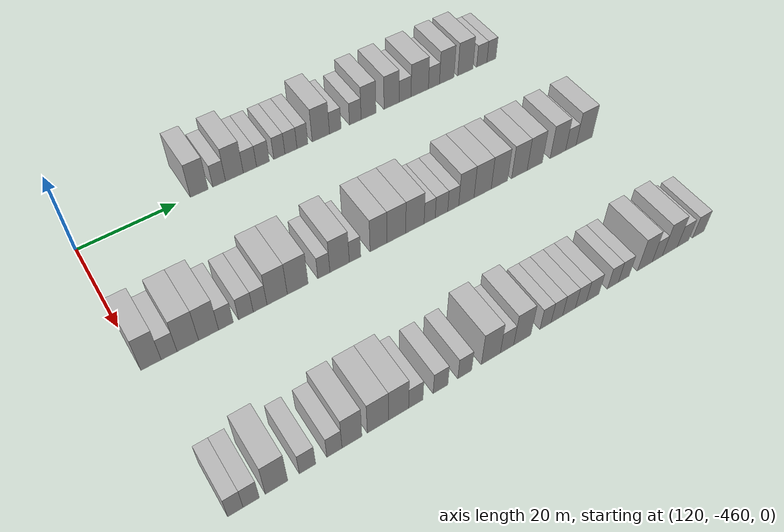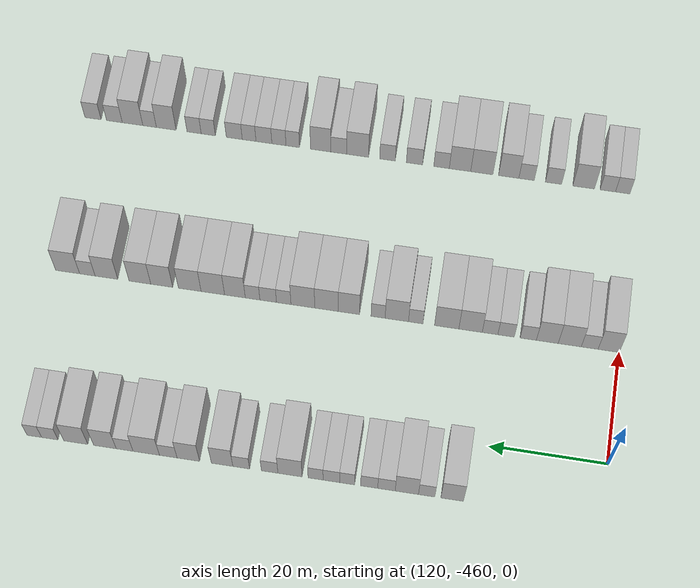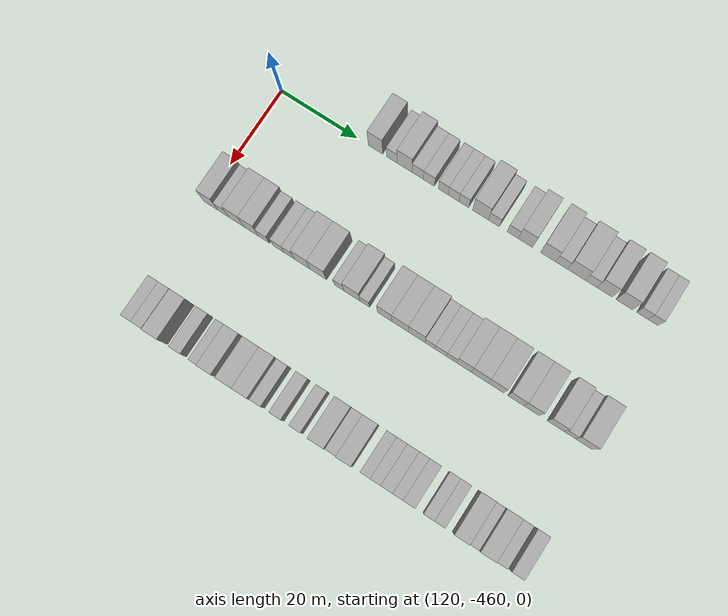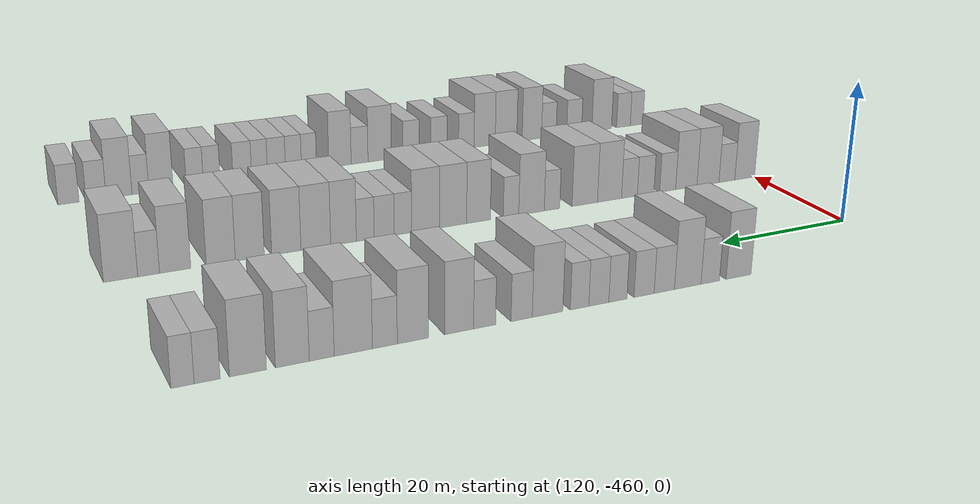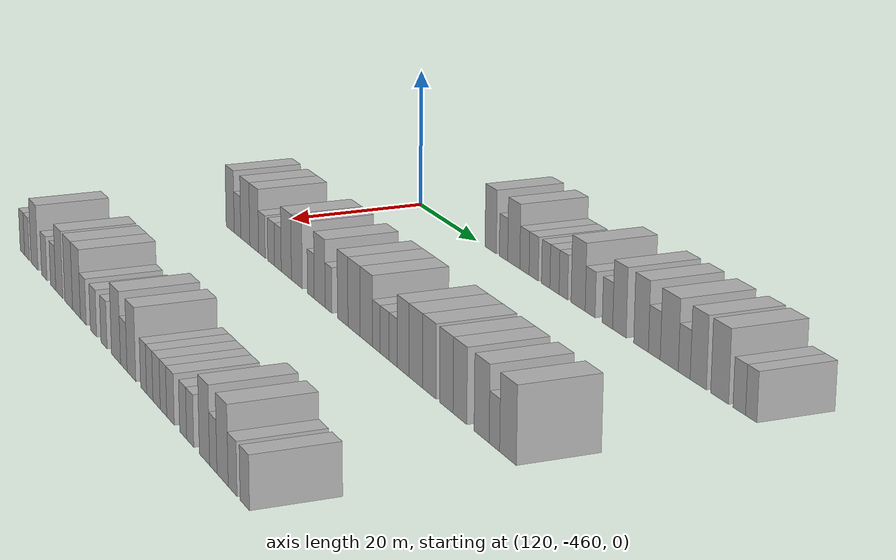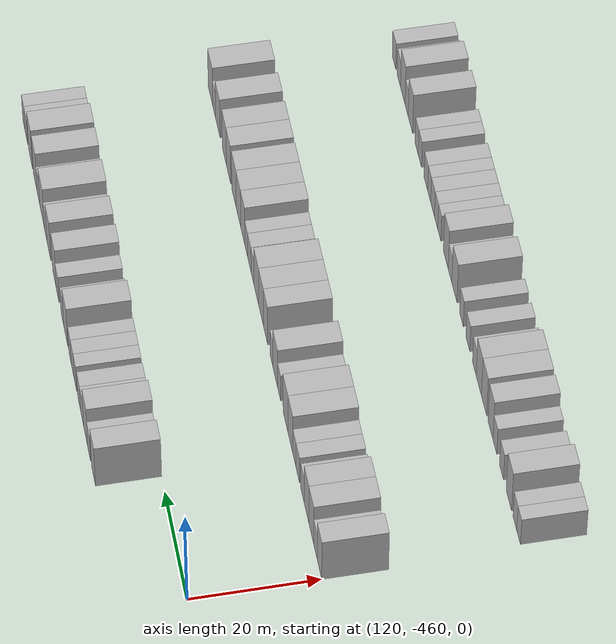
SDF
<sdf version="1.6">
 <world name="default">
  <model name="building_690">
   <static>1</static>
   <pose>115.0000 -435.1415 0 0.000000 0.000000 0.000000</pose>
   <link name="link">
    <pose>0 0 4.50 0 0 0</pose>
    <collision name="collision"><geometry><box><size>10.0000 3.7746 9.0000</size></box></geometry></collision>
    <visual name="visual">
     <cast_shadows>0</cast_shadows>
     <geometry><box><size>10.0000 3.7746 9.0000</size></box></geometry>
     <material>
      <script>
       <uri>model://HANNAS_wall/materials/scripts</uri>
       <uri>model://HANNAS_wall/materials/textures</uri>
       <name>vrc/HANNAS_wall</name>
      </script>
     </material>
    </visual>
   </link>
  </model>
  <model name="building_691">
   <static>1</static>
   <pose>115.0000 -430.8856 0 0.000000 0.000000 0.000000</pose>
   <link name="link">
    <pose>0 0 3.00 0 0 0</pose>
    <collision name="collision"><geometry><box><size>10.0000 2.7371 6.0000</size></box></geometry></collision>
    <visual name="visual">
     <cast_shadows>0</cast_shadows>
     <geometry><box><size>10.0000 2.7371 6.0000</size></box></geometry>
     <material>
      <script>
       <uri>model://HANNAS_wall/materials/scripts</uri>
       <uri>model://HANNAS_wall/materials/textures</uri>
       <name>vrc/HANNAS_wall</name>
      </script>
     </material>
    </visual>
   </link>
  </model>
  <model name="building_692">
   <static>1</static>
   <pose>115.0000 -427.5727 0 0.000000 0.000000 0.000000</pose>
   <link name="link">
    <pose>0 0 4.50 0 0 0</pose>
    <collision name="collision"><geometry><box><size>10.0000 3.8888 9.0000</size></box></geometry></collision>
    <visual name="visual">
     <cast_shadows>0</cast_shadows>
     <geometry><box><size>10.0000 3.8888 9.0000</size></box></geometry>
     <material>
      <script>
       <uri>model://HANNAS_wall/materials/scripts</uri>
       <uri>model://HANNAS_wall/materials/textures</uri>
       <name>vrc/HANNAS_wall</name>
      </script>
     </material>
    </visual>
   </link>
  </model>
  <model name="building_693">
   <static>1</static>
   <pose>115.0000 -424.1624 0 0.000000 0.000000 0.000000</pose>
   <link name="link">
    <pose>0 0 3.00 0 0 0</pose>
    <collision name="collision"><geometry><box><size>10.0000 2.9317 6.0000</size></box></geometry></collision>
    <visual name="visual">
     <cast_shadows>0</cast_shadows>
     <geometry><box><size>10.0000 2.9317 6.0000</size></box></geometry>
     <material>
      <script>
       <uri>model://HANNAS_wall/materials/scripts</uri>
       <uri>model://HANNAS_wall/materials/textures</uri>
       <name>vrc/HANNAS_wall</name>
      </script>
     </material>
    </visual>
   </link>
  </model>
  <model name="building_694">
   <static>1</static>
   <pose>115.0000 -421.2687 0 0.000000 0.000000 0.000000</pose>
   <link name="link">
    <pose>0 0 3.00 0 0 0</pose>
    <collision name="collision"><geometry><box><size>10.0000 2.8557 6.0000</size></box></geometry></collision>
    <visual name="visual">
     <cast_shadows>0</cast_shadows>
     <geometry><box><size>10.0000 2.8557 6.0000</size></box></geometry>
     <material>
      <script>
       <uri>model://HANNAS_wall/materials/scripts</uri>
       <uri>model://HANNAS_wall/materials/textures</uri>
       <name>vrc/HANNAS_wall</name>
      </script>
     </material>
    </visual>
   </link>
  </model>
  <model name="building_695">
   <static>1</static>
   <pose>115.0000 -417.5749 0 0.000000 0.000000 0.000000</pose>
   <link name="link">
    <pose>0 0 3.00 0 0 0</pose>
    <collision name="collision"><geometry><box><size>10.0000 2.5320 6.0000</size></box></geometry></collision>
    <visual name="visual">
     <cast_shadows>0</cast_shadows>
     <geometry><box><size>10.0000 2.5320 6.0000</size></box></geometry>
     <material>
      <script>
       <uri>model://HANNAS_wall/materials/scripts</uri>
       <uri>model://HANNAS_wall/materials/textures</uri>
       <name>vrc/HANNAS_wall</name>
      </script>
     </material>
    </visual>
   </link>
  </model>
  <model name="building_696">
   <static>1</static>
   <pose>115.0000 -414.9284 0 0.000000 0.000000 0.000000</pose>
   <link name="link">
    <pose>0 0 3.00 0 0 0</pose>
    <collision name="collision"><geometry><box><size>10.0000 2.7609 6.0000</size></box></geometry></collision>
    <visual name="visual">
     <cast_shadows>0</cast_shadows>
     <geometry><box><size>10.0000 2.7609 6.0000</size></box></geometry>
     <material>
      <script>
       <uri>model://HANNAS_wall/materials/scripts</uri>
       <uri>model://HANNAS_wall/materials/textures</uri>
       <name>vrc/HANNAS_wall</name>
      </script>
     </material>
    </visual>
   </link>
  </model>
  <model name="building_697">
   <static>1</static>
   <pose>115.0000 -412.2848 0 0.000000 0.000000 0.000000</pose>
   <link name="link">
    <pose>0 0 3.00 0 0 0</pose>
    <collision name="collision"><geometry><box><size>10.0000 2.5263 6.0000</size></box></geometry></collision>
    <visual name="visual">
     <cast_shadows>0</cast_shadows>
     <geometry><box><size>10.0000 2.5263 6.0000</size></box></geometry>
     <material>
      <script>
       <uri>model://HANNAS_wall/materials/scripts</uri>
       <uri>model://HANNAS_wall/materials/textures</uri>
       <name>vrc/HANNAS_wall</name>
      </script>
     </material>
    </visual>
   </link>
  </model>
  <model name="building_698">
   <static>1</static>
   <pose>115.0000 -407.9855 0 0.000000 0.000000 0.000000</pose>
   <link name="link">
    <pose>0 0 4.50 0 0 0</pose>
    <collision name="collision"><geometry><box><size>10.0000 4.0724 9.0000</size></box></geometry></collision>
    <visual name="visual">
     <cast_shadows>0</cast_shadows>
     <geometry><box><size>10.0000 4.0724 9.0000</size></box></geometry>
     <material>
      <script>
       <uri>model://HANNAS_wall/materials/scripts</uri>
       <uri>model://HANNAS_wall/materials/textures</uri>
       <name>vrc/HANNAS_wall</name>
      </script>
     </material>
    </visual>
   </link>
  </model>
  <model name="building_699">
   <static>1</static>
   <pose>115.0000 -404.5561 0 0.000000 0.000000 0.000000</pose>
   <link name="link">
    <pose>0 0 3.00 0 0 0</pose>
    <collision name="collision"><geometry><box><size>10.0000 2.7863 6.0000</size></box></geometry></collision>
    <visual name="visual">
     <cast_shadows>0</cast_shadows>
     <geometry><box><size>10.0000 2.7863 6.0000</size></box></geometry>
     <material>
      <script>
       <uri>model://HANNAS_wall/materials/scripts</uri>
       <uri>model://HANNAS_wall/materials/textures</uri>
       <name>vrc/HANNAS_wall</name>
      </script>
     </material>
    </visual>
   </link>
  </model>
  <model name="building_700">
   <static>1</static>
   <pose>115.0000 -399.7503 0 0.000000 0.000000 0.000000</pose>
   <link name="link">
    <pose>0 0 3.00 0 0 0</pose>
    <collision name="collision"><geometry><box><size>10.0000 2.8254 6.0000</size></box></geometry></collision>
    <visual name="visual">
     <cast_shadows>0</cast_shadows>
     <geometry><box><size>10.0000 2.8254 6.0000</size></box></geometry>
     <material>
      <script>
       <uri>model://HANNAS_wall/materials/scripts</uri>
       <uri>model://HANNAS_wall/materials/textures</uri>
       <name>vrc/HANNAS_wall</name>
      </script>
     </material>
    </visual>
   </link>
  </model>
  <model name="building_701">
   <static>1</static>
   <pose>115.0000 -396.5195 0 0.000000 0.000000 0.000000</pose>
   <link name="link">
    <pose>0 0 4.50 0 0 0</pose>
    <collision name="collision"><geometry><box><size>10.0000 3.6361 9.0000</size></box></geometry></collision>
    <visual name="visual">
     <cast_shadows>0</cast_shadows>
     <geometry><box><size>10.0000 3.6361 9.0000</size></box></geometry>
     <material>
      <script>
       <uri>model://HANNAS_wall/materials/scripts</uri>
       <uri>model://HANNAS_wall/materials/textures</uri>
       <name>vrc/HANNAS_wall</name>
      </script>
     </material>
    </visual>
   </link>
  </model>
  <model name="building_702">
   <static>1</static>
   <pose>115.0000 -390.7950 0 0.000000 0.000000 0.000000</pose>
   <link name="link">
    <pose>0 0 4.50 0 0 0</pose>
    <collision name="collision"><geometry><box><size>10.0000 3.8131 9.0000</size></box></geometry></collision>
    <visual name="visual">
     <cast_shadows>0</cast_shadows>
     <geometry><box><size>10.0000 3.8131 9.0000</size></box></geometry>
     <material>
      <script>
       <uri>model://HANNAS_wall/materials/scripts</uri>
       <uri>model://HANNAS_wall/materials/textures</uri>
       <name>vrc/HANNAS_wall</name>
      </script>
     </material>
    </visual>
   </link>
  </model>
  <model name="building_703">
   <static>1</static>
   <pose>115.0000 -387.3922 0 0.000000 0.000000 0.000000</pose>
   <link name="link">
    <pose>0 0 3.00 0 0 0</pose>
    <collision name="collision"><geometry><box><size>10.0000 2.9925 6.0000</size></box></geometry></collision>
    <visual name="visual">
     <cast_shadows>0</cast_shadows>
     <geometry><box><size>10.0000 2.9925 6.0000</size></box></geometry>
     <material>
      <script>
       <uri>model://HANNAS_wall/materials/scripts</uri>
       <uri>model://HANNAS_wall/materials/textures</uri>
       <name>vrc/HANNAS_wall</name>
      </script>
     </material>
    </visual>
   </link>
  </model>
  <model name="building_704">
   <static>1</static>
   <pose>115.0000 -383.6499 0 0.000000 0.000000 0.000000</pose>
   <link name="link">
    <pose>0 0 4.50 0 0 0</pose>
    <collision name="collision"><geometry><box><size>10.0000 4.4921 9.0000</size></box></geometry></collision>
    <visual name="visual">
     <cast_shadows>0</cast_shadows>
     <geometry><box><size>10.0000 4.4921 9.0000</size></box></geometry>
     <material>
      <script>
       <uri>model://HANNAS_wall/materials/scripts</uri>
       <uri>model://HANNAS_wall/materials/textures</uri>
       <name>vrc/HANNAS_wall</name>
      </script>
     </material>
    </visual>
   </link>
  </model>
  <model name="building_705">
   <static>1</static>
   <pose>115.0000 -379.9650 0 0.000000 0.000000 0.000000</pose>
   <link name="link">
    <pose>0 0 3.00 0 0 0</pose>
    <collision name="collision"><geometry><box><size>10.0000 2.8778 6.0000</size></box></geometry></collision>
    <visual name="visual">
     <cast_shadows>0</cast_shadows>
     <geometry><box><size>10.0000 2.8778 6.0000</size></box></geometry>
     <material>
      <script>
       <uri>model://HANNAS_wall/materials/scripts</uri>
       <uri>model://HANNAS_wall/materials/textures</uri>
       <name>vrc/HANNAS_wall</name>
      </script>
     </material>
    </visual>
   </link>
  </model>
  <model name="building_706">
   <static>1</static>
   <pose>115.0000 -376.6048 0 0.000000 0.000000 0.000000</pose>
   <link name="link">
    <pose>0 0 4.50 0 0 0</pose>
    <collision name="collision"><geometry><box><size>10.0000 3.8425 9.0000</size></box></geometry></collision>
    <visual name="visual">
     <cast_shadows>0</cast_shadows>
     <geometry><box><size>10.0000 3.8425 9.0000</size></box></geometry>
     <material>
      <script>
       <uri>model://HANNAS_wall/materials/scripts</uri>
       <uri>model://HANNAS_wall/materials/textures</uri>
       <name>vrc/HANNAS_wall</name>
      </script>
     </material>
    </visual>
   </link>
  </model>
  <model name="building_707">
   <static>1</static>
   <pose>115.0000 -371.6330 0 0.000000 0.000000 0.000000</pose>
   <link name="link">
    <pose>0 0 4.50 0 0 0</pose>
    <collision name="collision"><geometry><box><size>10.0000 4.1010 9.0000</size></box></geometry></collision>
    <visual name="visual">
     <cast_shadows>0</cast_shadows>
     <geometry><box><size>10.0000 4.1010 9.0000</size></box></geometry>
     <material>
      <script>
       <uri>model://HANNAS_wall/materials/scripts</uri>
       <uri>model://HANNAS_wall/materials/textures</uri>
       <name>vrc/HANNAS_wall</name>
      </script>
     </material>
    </visual>
   </link>
  </model>
  <model name="building_708">
   <static>1</static>
   <pose>115.0000 -367.1819 0 0.000000 0.000000 0.000000</pose>
   <link name="link">
    <pose>0 0 3.00 0 0 0</pose>
    <collision name="collision"><geometry><box><size>10.0000 2.8012 6.0000</size></box></geometry></collision>
    <visual name="visual">
     <cast_shadows>0</cast_shadows>
     <geometry><box><size>10.0000 2.8012 6.0000</size></box></geometry>
     <material>
      <script>
       <uri>model://HANNAS_wall/materials/scripts</uri>
       <uri>model://HANNAS_wall/materials/textures</uri>
       <name>vrc/HANNAS_wall</name>
      </script>
     </material>
    </visual>
   </link>
  </model>
  <model name="building_709">
   <static>1</static>
   <pose>115.0000 -364.5373 0 0.000000 0.000000 0.000000</pose>
   <link name="link">
    <pose>0 0 3.00 0 0 0</pose>
    <collision name="collision"><geometry><box><size>10.0000 2.4880 6.0000</size></box></geometry></collision>
    <visual name="visual">
     <cast_shadows>0</cast_shadows>
     <geometry><box><size>10.0000 2.4880 6.0000</size></box></geometry>
     <material>
      <script>
       <uri>model://HANNAS_wall/materials/scripts</uri>
       <uri>model://HANNAS_wall/materials/textures</uri>
       <name>vrc/HANNAS_wall</name>
      </script>
     </material>
    </visual>
   </link>
  </model>
  <model name="building_917">
   <static>1</static>
   <pose>145.0000 -458.1745 0 0.000000 0.000000 0.000000</pose>
   <link name="link">
    <pose>0 0 4.50 0 0 0</pose>
    <collision name="collision"><geometry><box><size>10.0000 3.6510 9.0000</size></box></geometry></collision>
    <visual name="visual">
     <cast_shadows>0</cast_shadows>
     <geometry><box><size>10.0000 3.6510 9.0000</size></box></geometry>
     <material>
      <script>
       <uri>model://HANNAS_wall/materials/scripts</uri>
       <uri>model://HANNAS_wall/materials/textures</uri>
       <name>vrc/HANNAS_wall</name>
      </script>
     </material>
    </visual>
   </link>
  </model>
  <model name="building_918">
   <static>1</static>
   <pose>145.0000 -454.9061 0 0.000000 0.000000 0.000000</pose>
   <link name="link">
    <pose>0 0 3.00 0 0 0</pose>
    <collision name="collision"><geometry><box><size>10.0000 2.8857 6.0000</size></box></geometry></collision>
    <visual name="visual">
     <cast_shadows>0</cast_shadows>
     <geometry><box><size>10.0000 2.8857 6.0000</size></box></geometry>
     <material>
      <script>
       <uri>model://HANNAS_wall/materials/scripts</uri>
       <uri>model://HANNAS_wall/materials/textures</uri>
       <name>vrc/HANNAS_wall</name>
      </script>
     </material>
    </visual>
   </link>
  </model>
  <model name="building_919">
   <static>1</static>
   <pose>145.0000 -451.4813 0 0.000000 0.000000 0.000000</pose>
   <link name="link">
    <pose>0 0 4.50 0 0 0</pose>
    <collision name="collision"><geometry><box><size>10.0000 3.9639 9.0000</size></box></geometry></collision>
    <visual name="visual">
     <cast_shadows>0</cast_shadows>
     <geometry><box><size>10.0000 3.9639 9.0000</size></box></geometry>
     <material>
      <script>
       <uri>model://HANNAS_wall/materials/scripts</uri>
       <uri>model://HANNAS_wall/materials/textures</uri>
       <name>vrc/HANNAS_wall</name>
      </script>
     </material>
    </visual>
   </link>
  </model>
  <model name="building_920">
   <static>1</static>
   <pose>145.0000 -447.6172 0 0.000000 0.000000 0.000000</pose>
   <link name="link">
    <pose>0 0 4.50 0 0 0</pose>
    <collision name="collision"><geometry><box><size>10.0000 3.7643 9.0000</size></box></geometry></collision>
    <visual name="visual">
     <cast_shadows>0</cast_shadows>
     <geometry><box><size>10.0000 3.7643 9.0000</size></box></geometry>
     <material>
      <script>
       <uri>model://HANNAS_wall/materials/scripts</uri>
       <uri>model://HANNAS_wall/materials/textures</uri>
       <name>vrc/HANNAS_wall</name>
      </script>
     </material>
    </visual>
   </link>
  </model>
  <model name="building_921">
   <static>1</static>
   <pose>145.0000 -444.3316 0 0.000000 0.000000 0.000000</pose>
   <link name="link">
    <pose>0 0 3.00 0 0 0</pose>
    <collision name="collision"><geometry><box><size>10.0000 2.8068 6.0000</size></box></geometry></collision>
    <visual name="visual">
     <cast_shadows>0</cast_shadows>
     <geometry><box><size>10.0000 2.8068 6.0000</size></box></geometry>
     <material>
      <script>
       <uri>model://HANNAS_wall/materials/scripts</uri>
       <uri>model://HANNAS_wall/materials/textures</uri>
       <name>vrc/HANNAS_wall</name>
      </script>
     </material>
    </visual>
   </link>
  </model>
  <model name="building_922">
   <static>1</static>
   <pose>145.0000 -440.5053 0 0.000000 0.000000 0.000000</pose>
   <link name="link">
    <pose>0 0 3.00 0 0 0</pose>
    <collision name="collision"><geometry><box><size>10.0000 2.8460 6.0000</size></box></geometry></collision>
    <visual name="visual">
     <cast_shadows>0</cast_shadows>
     <geometry><box><size>10.0000 2.8460 6.0000</size></box></geometry>
     <material>
      <script>
       <uri>model://HANNAS_wall/materials/scripts</uri>
       <uri>model://HANNAS_wall/materials/textures</uri>
       <name>vrc/HANNAS_wall</name>
      </script>
     </material>
    </visual>
   </link>
  </model>
  <model name="building_923">
   <static>1</static>
   <pose>145.0000 -437.7346 0 0.000000 0.000000 0.000000</pose>
   <link name="link">
    <pose>0 0 3.00 0 0 0</pose>
    <collision name="collision"><geometry><box><size>10.0000 2.6953 6.0000</size></box></geometry></collision>
    <visual name="visual">
     <cast_shadows>0</cast_shadows>
     <geometry><box><size>10.0000 2.6953 6.0000</size></box></geometry>
     <material>
      <script>
       <uri>model://HANNAS_wall/materials/scripts</uri>
       <uri>model://HANNAS_wall/materials/textures</uri>
       <name>vrc/HANNAS_wall</name>
      </script>
     </material>
    </visual>
   </link>
  </model>
  <model name="building_924">
   <static>1</static>
   <pose>145.0000 -434.3648 0 0.000000 0.000000 0.000000</pose>
   <link name="link">
    <pose>0 0 4.50 0 0 0</pose>
    <collision name="collision"><geometry><box><size>10.0000 4.0444 9.0000</size></box></geometry></collision>
    <visual name="visual">
     <cast_shadows>0</cast_shadows>
     <geometry><box><size>10.0000 4.0444 9.0000</size></box></geometry>
     <material>
      <script>
       <uri>model://HANNAS_wall/materials/scripts</uri>
       <uri>model://HANNAS_wall/materials/textures</uri>
       <name>vrc/HANNAS_wall</name>
      </script>
     </material>
    </visual>
   </link>
  </model>
  <model name="building_925">
   <static>1</static>
   <pose>145.0000 -430.2356 0 0.000000 0.000000 0.000000</pose>
   <link name="link">
    <pose>0 0 4.50 0 0 0</pose>
    <collision name="collision"><geometry><box><size>10.0000 4.2140 9.0000</size></box></geometry></collision>
    <visual name="visual">
     <cast_shadows>0</cast_shadows>
     <geometry><box><size>10.0000 4.2140 9.0000</size></box></geometry>
     <material>
      <script>
       <uri>model://HANNAS_wall/materials/scripts</uri>
       <uri>model://HANNAS_wall/materials/textures</uri>
       <name>vrc/HANNAS_wall</name>
      </script>
     </material>
    </visual>
   </link>
  </model>
  <model name="building_926">
   <static>1</static>
   <pose>145.0000 -424.8741 0 0.000000 0.000000 0.000000</pose>
   <link name="link">
    <pose>0 0 3.00 0 0 0</pose>
    <collision name="collision"><geometry><box><size>10.0000 2.5090 6.0000</size></box></geometry></collision>
    <visual name="visual">
     <cast_shadows>0</cast_shadows>
     <geometry><box><size>10.0000 2.5090 6.0000</size></box></geometry>
     <material>
      <script>
       <uri>model://HANNAS_wall/materials/scripts</uri>
       <uri>model://HANNAS_wall/materials/textures</uri>
       <name>vrc/HANNAS_wall</name>
      </script>
     </material>
    </visual>
   </link>
  </model>
  <model name="building_927">
   <static>1</static>
   <pose>145.0000 -421.5827 0 0.000000 0.000000 0.000000</pose>
   <link name="link">
    <pose>0 0 4.50 0 0 0</pose>
    <collision name="collision"><geometry><box><size>10.0000 4.0738 9.0000</size></box></geometry></collision>
    <visual name="visual">
     <cast_shadows>0</cast_shadows>
     <geometry><box><size>10.0000 4.0738 9.0000</size></box></geometry>
     <material>
      <script>
       <uri>model://HANNAS_wall/materials/scripts</uri>
       <uri>model://HANNAS_wall/materials/textures</uri>
       <name>vrc/HANNAS_wall</name>
      </script>
     </material>
    </visual>
   </link>
  </model>
  <model name="building_928">
   <static>1</static>
   <pose>145.0000 -418.3230 0 0.000000 0.000000 0.000000</pose>
   <link name="link">
    <pose>0 0 3.00 0 0 0</pose>
    <collision name="collision"><geometry><box><size>10.0000 2.4456 6.0000</size></box></geometry></collision>
    <visual name="visual">
     <cast_shadows>0</cast_shadows>
     <geometry><box><size>10.0000 2.4456 6.0000</size></box></geometry>
     <material>
      <script>
       <uri>model://HANNAS_wall/materials/scripts</uri>
       <uri>model://HANNAS_wall/materials/textures</uri>
       <name>vrc/HANNAS_wall</name>
      </script>
     </material>
    </visual>
   </link>
  </model>
  <model name="building_929">
   <static>1</static>
   <pose>145.0000 -413.2552 0 0.000000 0.000000 0.000000</pose>
   <link name="link">
    <pose>0 0 4.50 0 0 0</pose>
    <collision name="collision"><geometry><box><size>10.0000 3.6899 9.0000</size></box></geometry></collision>
    <visual name="visual">
     <cast_shadows>0</cast_shadows>
     <geometry><box><size>10.0000 3.6899 9.0000</size></box></geometry>
     <material>
      <script>
       <uri>model://HANNAS_wall/materials/scripts</uri>
       <uri>model://HANNAS_wall/materials/textures</uri>
       <name>vrc/HANNAS_wall</name>
      </script>
     </material>
    </visual>
   </link>
  </model>
  <model name="building_930">
   <static>1</static>
   <pose>145.0000 -409.3502 0 0.000000 0.000000 0.000000</pose>
   <link name="link">
    <pose>0 0 4.50 0 0 0</pose>
    <collision name="collision"><geometry><box><size>10.0000 4.1201 9.0000</size></box></geometry></collision>
    <visual name="visual">
     <cast_shadows>0</cast_shadows>
     <geometry><box><size>10.0000 4.1201 9.0000</size></box></geometry>
     <material>
      <script>
       <uri>model://HANNAS_wall/materials/scripts</uri>
       <uri>model://HANNAS_wall/materials/textures</uri>
       <name>vrc/HANNAS_wall</name>
      </script>
     </material>
    </visual>
   </link>
  </model>
  <model name="building_931">
   <static>1</static>
   <pose>145.0000 -405.2065 0 0.000000 0.000000 0.000000</pose>
   <link name="link">
    <pose>0 0 4.50 0 0 0</pose>
    <collision name="collision"><geometry><box><size>10.0000 4.1674 9.0000</size></box></geometry></collision>
    <visual name="visual">
     <cast_shadows>0</cast_shadows>
     <geometry><box><size>10.0000 4.1674 9.0000</size></box></geometry>
     <material>
      <script>
       <uri>model://HANNAS_wall/materials/scripts</uri>
       <uri>model://HANNAS_wall/materials/textures</uri>
       <name>vrc/HANNAS_wall</name>
      </script>
     </material>
    </visual>
   </link>
  </model>
  <model name="building_932">
   <static>1</static>
   <pose>145.0000 -401.8544 0 0.000000 0.000000 0.000000</pose>
   <link name="link">
    <pose>0 0 3.00 0 0 0</pose>
    <collision name="collision"><geometry><box><size>10.0000 2.5367 6.0000</size></box></geometry></collision>
    <visual name="visual">
     <cast_shadows>0</cast_shadows>
     <geometry><box><size>10.0000 2.5367 6.0000</size></box></geometry>
     <material>
      <script>
       <uri>model://HANNAS_wall/materials/scripts</uri>
       <uri>model://HANNAS_wall/materials/textures</uri>
       <name>vrc/HANNAS_wall</name>
      </script>
     </material>
    </visual>
   </link>
  </model>
  <model name="building_933">
   <static>1</static>
   <pose>145.0000 -399.1332 0 0.000000 0.000000 0.000000</pose>
   <link name="link">
    <pose>0 0 3.00 0 0 0</pose>
    <collision name="collision"><geometry><box><size>10.0000 2.9057 6.0000</size></box></geometry></collision>
    <visual name="visual">
     <cast_shadows>0</cast_shadows>
     <geometry><box><size>10.0000 2.9057 6.0000</size></box></geometry>
     <material>
      <script>
       <uri>model://HANNAS_wall/materials/scripts</uri>
       <uri>model://HANNAS_wall/materials/textures</uri>
       <name>vrc/HANNAS_wall</name>
      </script>
     </material>
    </visual>
   </link>
  </model>
  <model name="building_934">
   <static>1</static>
   <pose>145.0000 -396.3976 0 0.000000 0.000000 0.000000</pose>
   <link name="link">
    <pose>0 0 3.00 0 0 0</pose>
    <collision name="collision"><geometry><box><size>10.0000 2.5655 6.0000</size></box></geometry></collision>
    <visual name="visual">
     <cast_shadows>0</cast_shadows>
     <geometry><box><size>10.0000 2.5655 6.0000</size></box></geometry>
     <material>
      <script>
       <uri>model://HANNAS_wall/materials/scripts</uri>
       <uri>model://HANNAS_wall/materials/textures</uri>
       <name>vrc/HANNAS_wall</name>
      </script>
     </material>
    </visual>
   </link>
  </model>
  <model name="building_935">
   <static>1</static>
   <pose>145.0000 -393.3001 0 0.000000 0.000000 0.000000</pose>
   <link name="link">
    <pose>0 0 4.50 0 0 0</pose>
    <collision name="collision"><geometry><box><size>10.0000 3.6296 9.0000</size></box></geometry></collision>
    <visual name="visual">
     <cast_shadows>0</cast_shadows>
     <geometry><box><size>10.0000 3.6296 9.0000</size></box></geometry>
     <material>
      <script>
       <uri>model://HANNAS_wall/materials/scripts</uri>
       <uri>model://HANNAS_wall/materials/textures</uri>
       <name>vrc/HANNAS_wall</name>
      </script>
     </material>
    </visual>
   </link>
  </model>
  <model name="building_936">
   <static>1</static>
   <pose>145.0000 -389.4156 0 0.000000 0.000000 0.000000</pose>
   <link name="link">
    <pose>0 0 4.50 0 0 0</pose>
    <collision name="collision"><geometry><box><size>10.0000 4.1393 9.0000</size></box></geometry></collision>
    <visual name="visual">
     <cast_shadows>0</cast_shadows>
     <geometry><box><size>10.0000 4.1393 9.0000</size></box></geometry>
     <material>
      <script>
       <uri>model://HANNAS_wall/materials/scripts</uri>
       <uri>model://HANNAS_wall/materials/textures</uri>
       <name>vrc/HANNAS_wall</name>
      </script>
     </material>
    </visual>
   </link>
  </model>
  <model name="building_937">
   <static>1</static>
   <pose>145.0000 -385.3441 0 0.000000 0.000000 0.000000</pose>
   <link name="link">
    <pose>0 0 4.50 0 0 0</pose>
    <collision name="collision"><geometry><box><size>10.0000 4.0038 9.0000</size></box></geometry></collision>
    <visual name="visual">
     <cast_shadows>0</cast_shadows>
     <geometry><box><size>10.0000 4.0038 9.0000</size></box></geometry>
     <material>
      <script>
       <uri>model://HANNAS_wall/materials/scripts</uri>
       <uri>model://HANNAS_wall/materials/textures</uri>
       <name>vrc/HANNAS_wall</name>
      </script>
     </material>
    </visual>
   </link>
  </model>
  <model name="building_938">
   <static>1</static>
   <pose>145.0000 -380.4040 0 0.000000 0.000000 0.000000</pose>
   <link name="link">
    <pose>0 0 4.50 0 0 0</pose>
    <collision name="collision"><geometry><box><size>10.0000 3.8763 9.0000</size></box></geometry></collision>
    <visual name="visual">
     <cast_shadows>0</cast_shadows>
     <geometry><box><size>10.0000 3.8763 9.0000</size></box></geometry>
     <material>
      <script>
       <uri>model://HANNAS_wall/materials/scripts</uri>
       <uri>model://HANNAS_wall/materials/textures</uri>
       <name>vrc/HANNAS_wall</name>
      </script>
     </material>
    </visual>
   </link>
  </model>
  <model name="building_939">
   <static>1</static>
   <pose>145.0000 -376.5436 0 0.000000 0.000000 0.000000</pose>
   <link name="link">
    <pose>0 0 4.50 0 0 0</pose>
    <collision name="collision"><geometry><box><size>10.0000 3.8447 9.0000</size></box></geometry></collision>
    <visual name="visual">
     <cast_shadows>0</cast_shadows>
     <geometry><box><size>10.0000 3.8447 9.0000</size></box></geometry>
     <material>
      <script>
       <uri>model://HANNAS_wall/materials/scripts</uri>
       <uri>model://HANNAS_wall/materials/textures</uri>
       <name>vrc/HANNAS_wall</name>
      </script>
     </material>
    </visual>
   </link>
  </model>
  <model name="building_940">
   <static>1</static>
   <pose>145.0000 -370.6159 0 0.000000 0.000000 0.000000</pose>
   <link name="link">
    <pose>0 0 4.50 0 0 0</pose>
    <collision name="collision"><geometry><box><size>10.0000 4.0107 9.0000</size></box></geometry></collision>
    <visual name="visual">
     <cast_shadows>0</cast_shadows>
     <geometry><box><size>10.0000 4.0107 9.0000</size></box></geometry>
     <material>
      <script>
       <uri>model://HANNAS_wall/materials/scripts</uri>
       <uri>model://HANNAS_wall/materials/textures</uri>
       <name>vrc/HANNAS_wall</name>
      </script>
     </material>
    </visual>
   </link>
  </model>
  <model name="building_941">
   <static>1</static>
   <pose>145.0000 -367.2355 0 0.000000 0.000000 0.000000</pose>
   <link name="link">
    <pose>0 0 3.00 0 0 0</pose>
    <collision name="collision"><geometry><box><size>10.0000 2.7501 6.0000</size></box></geometry></collision>
    <visual name="visual">
     <cast_shadows>0</cast_shadows>
     <geometry><box><size>10.0000 2.7501 6.0000</size></box></geometry>
     <material>
      <script>
       <uri>model://HANNAS_wall/materials/scripts</uri>
       <uri>model://HANNAS_wall/materials/textures</uri>
       <name>vrc/HANNAS_wall</name>
      </script>
     </material>
    </visual>
   </link>
  </model>
  <model name="building_942">
   <static>1</static>
   <pose>145.0000 -363.7291 0 0.000000 0.000000 0.000000</pose>
   <link name="link">
    <pose>0 0 4.50 0 0 0</pose>
    <collision name="collision"><geometry><box><size>10.0000 4.2627 9.0000</size></box></geometry></collision>
    <visual name="visual">
     <cast_shadows>0</cast_shadows>
     <geometry><box><size>10.0000 4.2627 9.0000</size></box></geometry>
     <material>
      <script>
       <uri>model://HANNAS_wall/materials/scripts</uri>
       <uri>model://HANNAS_wall/materials/textures</uri>
       <name>vrc/HANNAS_wall</name>
      </script>
     </material>
    </visual>
   </link>
  </model>
  <model name="building_1148">
   <static>1</static>
   <pose>175.0000 -457.7146 0 0.000000 0.000000 0.000000</pose>
   <link name="link">
    <pose>0 0 3.00 0 0 0</pose>
    <collision name="collision"><geometry><box><size>10.0000 2.5709 6.0000</size></box></geometry></collision>
    <visual name="visual">
     <cast_shadows>0</cast_shadows>
     <geometry><box><size>10.0000 2.5709 6.0000</size></box></geometry>
     <material>
      <script>
       <uri>model://HANNAS_wall/materials/scripts</uri>
       <uri>model://HANNAS_wall/materials/textures</uri>
       <name>vrc/HANNAS_wall</name>
      </script>
     </material>
    </visual>
   </link>
  </model>
  <model name="building_1149">
   <static>1</static>
   <pose>175.0000 -455.0652 0 0.000000 0.000000 0.000000</pose>
   <link name="link">
    <pose>0 0 3.00 0 0 0</pose>
    <collision name="collision"><geometry><box><size>10.0000 2.7280 6.0000</size></box></geometry></collision>
    <visual name="visual">
     <cast_shadows>0</cast_shadows>
     <geometry><box><size>10.0000 2.7280 6.0000</size></box></geometry>
     <material>
      <script>
       <uri>model://HANNAS_wall/materials/scripts</uri>
       <uri>model://HANNAS_wall/materials/textures</uri>
       <name>vrc/HANNAS_wall</name>
      </script>
     </material>
    </visual>
   </link>
  </model>
  <model name="building_1150">
   <static>1</static>
   <pose>175.0000 -450.7693 0 0.000000 0.000000 0.000000</pose>
   <link name="link">
    <pose>0 0 4.50 0 0 0</pose>
    <collision name="collision"><geometry><box><size>10.0000 3.8637 9.0000</size></box></geometry></collision>
    <visual name="visual">
     <cast_shadows>0</cast_shadows>
     <geometry><box><size>10.0000 3.8637 9.0000</size></box></geometry>
     <material>
      <script>
       <uri>model://HANNAS_wall/materials/scripts</uri>
       <uri>model://HANNAS_wall/materials/textures</uri>
       <name>vrc/HANNAS_wall</name>
      </script>
     </material>
    </visual>
   </link>
  </model>
  <model name="building_1151">
   <static>1</static>
   <pose>175.0000 -445.3924 0 0.000000 0.000000 0.000000</pose>
   <link name="link">
    <pose>0 0 3.00 0 0 0</pose>
    <collision name="collision"><geometry><box><size>10.0000 2.8902 6.0000</size></box></geometry></collision>
    <visual name="visual">
     <cast_shadows>0</cast_shadows>
     <geometry><box><size>10.0000 2.8902 6.0000</size></box></geometry>
     <material>
      <script>
       <uri>model://HANNAS_wall/materials/scripts</uri>
       <uri>model://HANNAS_wall/materials/textures</uri>
       <name>vrc/HANNAS_wall</name>
      </script>
     </material>
    </visual>
   </link>
  </model>
  <model name="building_1152">
   <static>1</static>
   <pose>175.0000 -440.5726 0 0.000000 0.000000 0.000000</pose>
   <link name="link">
    <pose>0 0 3.00 0 0 0</pose>
    <collision name="collision"><geometry><box><size>10.0000 2.7493 6.0000</size></box></geometry></collision>
    <visual name="visual">
     <cast_shadows>0</cast_shadows>
     <geometry><box><size>10.0000 2.7493 6.0000</size></box></geometry>
     <material>
      <script>
       <uri>model://HANNAS_wall/materials/scripts</uri>
       <uri>model://HANNAS_wall/materials/textures</uri>
       <name>vrc/HANNAS_wall</name>
      </script>
     </material>
    </visual>
   </link>
  </model>
  <model name="building_1153">
   <static>1</static>
   <pose>175.0000 -437.3773 0 0.000000 0.000000 0.000000</pose>
   <link name="link">
    <pose>0 0 4.50 0 0 0</pose>
    <collision name="collision"><geometry><box><size>10.0000 3.6412 9.0000</size></box></geometry></collision>
    <visual name="visual">
     <cast_shadows>0</cast_shadows>
     <geometry><box><size>10.0000 3.6412 9.0000</size></box></geometry>
     <material>
      <script>
       <uri>model://HANNAS_wall/materials/scripts</uri>
       <uri>model://HANNAS_wall/materials/textures</uri>
       <name>vrc/HANNAS_wall</name>
      </script>
     </material>
    </visual>
   </link>
  </model>
  <model name="building_1154">
   <static>1</static>
   <pose>175.0000 -432.5638 0 0.000000 0.000000 0.000000</pose>
   <link name="link">
    <pose>0 0 4.50 0 0 0</pose>
    <collision name="collision"><geometry><box><size>10.0000 3.9859 9.0000</size></box></geometry></collision>
    <visual name="visual">
     <cast_shadows>0</cast_shadows>
     <geometry><box><size>10.0000 3.9859 9.0000</size></box></geometry>
     <material>
      <script>
       <uri>model://HANNAS_wall/materials/scripts</uri>
       <uri>model://HANNAS_wall/materials/textures</uri>
       <name>vrc/HANNAS_wall</name>
      </script>
     </material>
    </visual>
   </link>
  </model>
  <model name="building_1155">
   <static>1</static>
   <pose>175.0000 -428.6475 0 0.000000 0.000000 0.000000</pose>
   <link name="link">
    <pose>0 0 4.50 0 0 0</pose>
    <collision name="collision"><geometry><box><size>10.0000 3.8468 9.0000</size></box></geometry></collision>
    <visual name="visual">
     <cast_shadows>0</cast_shadows>
     <geometry><box><size>10.0000 3.8468 9.0000</size></box></geometry>
     <material>
      <script>
       <uri>model://HANNAS_wall/materials/scripts</uri>
       <uri>model://HANNAS_wall/materials/textures</uri>
       <name>vrc/HANNAS_wall</name>
      </script>
     </material>
    </visual>
   </link>
  </model>
  <model name="building_1156">
   <static>1</static>
   <pose>175.0000 -425.3261 0 0.000000 0.000000 0.000000</pose>
   <link name="link">
    <pose>0 0 3.00 0 0 0</pose>
    <collision name="collision"><geometry><box><size>10.0000 2.7959 6.0000</size></box></geometry></collision>
    <visual name="visual">
     <cast_shadows>0</cast_shadows>
     <geometry><box><size>10.0000 2.7959 6.0000</size></box></geometry>
     <material>
      <script>
       <uri>model://HANNAS_wall/materials/scripts</uri>
       <uri>model://HANNAS_wall/materials/textures</uri>
       <name>vrc/HANNAS_wall</name>
      </script>
     </material>
    </visual>
   </link>
  </model>
  <model name="building_1157">
   <static>1</static>
   <pose>175.0000 -420.4586 0 0.000000 0.000000 0.000000</pose>
   <link name="link">
    <pose>0 0 3.00 0 0 0</pose>
    <collision name="collision"><geometry><box><size>10.0000 2.9391 6.0000</size></box></geometry></collision>
    <visual name="visual">
     <cast_shadows>0</cast_shadows>
     <geometry><box><size>10.0000 2.9391 6.0000</size></box></geometry>
     <material>
      <script>
       <uri>model://HANNAS_wall/materials/scripts</uri>
       <uri>model://HANNAS_wall/materials/textures</uri>
       <name>vrc/HANNAS_wall</name>
      </script>
     </material>
    </visual>
   </link>
  </model>
  <model name="building_1158">
   <static>1</static>
   <pose>175.0000 -415.5788 0 0.000000 0.000000 0.000000</pose>
   <link name="link">
    <pose>0 0 3.00 0 0 0</pose>
    <collision name="collision"><geometry><box><size>10.0000 2.8205 6.0000</size></box></geometry></collision>
    <visual name="visual">
     <cast_shadows>0</cast_shadows>
     <geometry><box><size>10.0000 2.8205 6.0000</size></box></geometry>
     <material>
      <script>
       <uri>model://HANNAS_wall/materials/scripts</uri>
       <uri>model://HANNAS_wall/materials/textures</uri>
       <name>vrc/HANNAS_wall</name>
      </script>
     </material>
    </visual>
   </link>
  </model>
  <model name="building_1159">
   <static>1</static>
   <pose>175.0000 -410.1810 0 0.000000 0.000000 0.000000</pose>
   <link name="link">
    <pose>0 0 4.50 0 0 0</pose>
    <collision name="collision"><geometry><box><size>10.0000 3.9752 9.0000</size></box></geometry></collision>
    <visual name="visual">
     <cast_shadows>0</cast_shadows>
     <geometry><box><size>10.0000 3.9752 9.0000</size></box></geometry>
     <material>
      <script>
       <uri>model://HANNAS_wall/materials/scripts</uri>
       <uri>model://HANNAS_wall/materials/textures</uri>
       <name>vrc/HANNAS_wall</name>
      </script>
     </material>
    </visual>
   </link>
  </model>
  <model name="building_1160">
   <static>1</static>
   <pose>175.0000 -406.7789 0 0.000000 0.000000 0.000000</pose>
   <link name="link">
    <pose>0 0 3.00 0 0 0</pose>
    <collision name="collision"><geometry><box><size>10.0000 2.8289 6.0000</size></box></geometry></collision>
    <visual name="visual">
     <cast_shadows>0</cast_shadows>
     <geometry><box><size>10.0000 2.8289 6.0000</size></box></geometry>
     <material>
      <script>
       <uri>model://HANNAS_wall/materials/scripts</uri>
       <uri>model://HANNAS_wall/materials/textures</uri>
       <name>vrc/HANNAS_wall</name>
      </script>
     </material>
    </visual>
   </link>
  </model>
  <model name="building_1161">
   <static>1</static>
   <pose>175.0000 -403.5143 0 0.000000 0.000000 0.000000</pose>
   <link name="link">
    <pose>0 0 4.50 0 0 0</pose>
    <collision name="collision"><geometry><box><size>10.0000 3.7003 9.0000</size></box></geometry></collision>
    <visual name="visual">
     <cast_shadows>0</cast_shadows>
     <geometry><box><size>10.0000 3.7003 9.0000</size></box></geometry>
     <material>
      <script>
       <uri>model://HANNAS_wall/materials/scripts</uri>
       <uri>model://HANNAS_wall/materials/textures</uri>
       <name>vrc/HANNAS_wall</name>
      </script>
     </material>
    </visual>
   </link>
  </model>
  <model name="building_1162">
   <static>1</static>
   <pose>175.0000 -398.4350 0 0.000000 0.000000 0.000000</pose>
   <link name="link">
    <pose>0 0 3.00 0 0 0</pose>
    <collision name="collision"><geometry><box><size>10.0000 2.4582 6.0000</size></box></geometry></collision>
    <visual name="visual">
     <cast_shadows>0</cast_shadows>
     <geometry><box><size>10.0000 2.4582 6.0000</size></box></geometry>
     <material>
      <script>
       <uri>model://HANNAS_wall/materials/scripts</uri>
       <uri>model://HANNAS_wall/materials/textures</uri>
       <name>vrc/HANNAS_wall</name>
      </script>
     </material>
    </visual>
   </link>
  </model>
  <model name="building_1163">
   <static>1</static>
   <pose>175.0000 -395.9212 0 0.000000 0.000000 0.000000</pose>
   <link name="link">
    <pose>0 0 3.00 0 0 0</pose>
    <collision name="collision"><geometry><box><size>10.0000 2.5695 6.0000</size></box></geometry></collision>
    <visual name="visual">
     <cast_shadows>0</cast_shadows>
     <geometry><box><size>10.0000 2.5695 6.0000</size></box></geometry>
     <material>
      <script>
       <uri>model://HANNAS_wall/materials/scripts</uri>
       <uri>model://HANNAS_wall/materials/textures</uri>
       <name>vrc/HANNAS_wall</name>
      </script>
     </material>
    </visual>
   </link>
  </model>
  <model name="building_1164">
   <static>1</static>
   <pose>175.0000 -393.1905 0 0.000000 0.000000 0.000000</pose>
   <link name="link">
    <pose>0 0 3.00 0 0 0</pose>
    <collision name="collision"><geometry><box><size>10.0000 2.8920 6.0000</size></box></geometry></collision>
    <visual name="visual">
     <cast_shadows>0</cast_shadows>
     <geometry><box><size>10.0000 2.8920 6.0000</size></box></geometry>
     <material>
      <script>
       <uri>model://HANNAS_wall/materials/scripts</uri>
       <uri>model://HANNAS_wall/materials/textures</uri>
       <name>vrc/HANNAS_wall</name>
      </script>
     </material>
    </visual>
   </link>
  </model>
  <model name="building_1165">
   <static>1</static>
   <pose>175.0000 -390.4948 0 0.000000 0.000000 0.000000</pose>
   <link name="link">
    <pose>0 0 3.00 0 0 0</pose>
    <collision name="collision"><geometry><box><size>10.0000 2.4993 6.0000</size></box></geometry></collision>
    <visual name="visual">
     <cast_shadows>0</cast_shadows>
     <geometry><box><size>10.0000 2.4993 6.0000</size></box></geometry>
     <material>
      <script>
       <uri>model://HANNAS_wall/materials/scripts</uri>
       <uri>model://HANNAS_wall/materials/textures</uri>
       <name>vrc/HANNAS_wall</name>
      </script>
     </material>
    </visual>
   </link>
  </model>
  <model name="building_1166">
   <static>1</static>
   <pose>175.0000 -387.7900 0 0.000000 0.000000 0.000000</pose>
   <link name="link">
    <pose>0 0 3.00 0 0 0</pose>
    <collision name="collision"><geometry><box><size>10.0000 2.9103 6.0000</size></box></geometry></collision>
    <visual name="visual">
     <cast_shadows>0</cast_shadows>
     <geometry><box><size>10.0000 2.9103 6.0000</size></box></geometry>
     <material>
      <script>
       <uri>model://HANNAS_wall/materials/scripts</uri>
       <uri>model://HANNAS_wall/materials/textures</uri>
       <name>vrc/HANNAS_wall</name>
      </script>
     </material>
    </visual>
   </link>
  </model>
  <model name="building_1167">
   <static>1</static>
   <pose>175.0000 -383.0429 0 0.000000 0.000000 0.000000</pose>
   <link name="link">
    <pose>0 0 3.00 0 0 0</pose>
    <collision name="collision"><geometry><box><size>10.0000 2.5839 6.0000</size></box></geometry></collision>
    <visual name="visual">
     <cast_shadows>0</cast_shadows>
     <geometry><box><size>10.0000 2.5839 6.0000</size></box></geometry>
     <material>
      <script>
       <uri>model://HANNAS_wall/materials/scripts</uri>
       <uri>model://HANNAS_wall/materials/textures</uri>
       <name>vrc/HANNAS_wall</name>
      </script>
     </material>
    </visual>
   </link>
  </model>
  <model name="building_1168">
   <static>1</static>
   <pose>175.0000 -380.4551 0 0.000000 0.000000 0.000000</pose>
   <link name="link">
    <pose>0 0 3.00 0 0 0</pose>
    <collision name="collision"><geometry><box><size>10.0000 2.5915 6.0000</size></box></geometry></collision>
    <visual name="visual">
     <cast_shadows>0</cast_shadows>
     <geometry><box><size>10.0000 2.5915 6.0000</size></box></geometry>
     <material>
      <script>
       <uri>model://HANNAS_wall/materials/scripts</uri>
       <uri>model://HANNAS_wall/materials/textures</uri>
       <name>vrc/HANNAS_wall</name>
      </script>
     </material>
    </visual>
   </link>
  </model>
  <model name="building_1169">
   <static>1</static>
   <pose>175.0000 -375.3559 0 0.000000 0.000000 0.000000</pose>
   <link name="link">
    <pose>0 0 4.50 0 0 0</pose>
    <collision name="collision"><geometry><box><size>10.0000 3.6070 9.0000</size></box></geometry></collision>
    <visual name="visual">
     <cast_shadows>0</cast_shadows>
     <geometry><box><size>10.0000 3.6070 9.0000</size></box></geometry>
     <material>
      <script>
       <uri>model://HANNAS_wall/materials/scripts</uri>
       <uri>model://HANNAS_wall/materials/textures</uri>
       <name>vrc/HANNAS_wall</name>
      </script>
     </material>
    </visual>
   </link>
  </model>
  <model name="building_1170">
   <static>1</static>
   <pose>175.0000 -372.3042 0 0.000000 0.000000 0.000000</pose>
   <link name="link">
    <pose>0 0 3.00 0 0 0</pose>
    <collision name="collision"><geometry><box><size>10.0000 2.4964 6.0000</size></box></geometry></collision>
    <visual name="visual">
     <cast_shadows>0</cast_shadows>
     <geometry><box><size>10.0000 2.4964 6.0000</size></box></geometry>
     <material>
      <script>
       <uri>model://HANNAS_wall/materials/scripts</uri>
       <uri>model://HANNAS_wall/materials/textures</uri>
       <name>vrc/HANNAS_wall</name>
      </script>
     </material>
    </visual>
   </link>
  </model>
  <model name="building_1171">
   <static>1</static>
   <pose>175.0000 -369.1697 0 0.000000 0.000000 0.000000</pose>
   <link name="link">
    <pose>0 0 4.50 0 0 0</pose>
    <collision name="collision"><geometry><box><size>10.0000 3.7724 9.0000</size></box></geometry></collision>
    <visual name="visual">
     <cast_shadows>0</cast_shadows>
     <geometry><box><size>10.0000 3.7724 9.0000</size></box></geometry>
     <material>
      <script>
       <uri>model://HANNAS_wall/materials/scripts</uri>
       <uri>model://HANNAS_wall/materials/textures</uri>
       <name>vrc/HANNAS_wall</name>
      </script>
     </material>
    </visual>
   </link>
  </model>
  <model name="building_1172">
   <static>1</static>
   <pose>175.0000 -365.8398 0 0.000000 0.000000 0.000000</pose>
   <link name="link">
    <pose>0 0 3.00 0 0 0</pose>
    <collision name="collision"><geometry><box><size>10.0000 2.8874 6.0000</size></box></geometry></collision>
    <visual name="visual">
     <cast_shadows>0</cast_shadows>
     <geometry><box><size>10.0000 2.8874 6.0000</size></box></geometry>
     <material>
      <script>
       <uri>model://HANNAS_wall/materials/scripts</uri>
       <uri>model://HANNAS_wall/materials/textures</uri>
       <name>vrc/HANNAS_wall</name>
      </script>
     </material>
    </visual>
   </link>
  </model>
  <model name="building_1173">
   <static>1</static>
   <pose>175.0000 -361.9079 0 0.000000 0.000000 0.000000</pose>
   <link name="link">
    <pose>0 0 3.00 0 0 0</pose>
    <collision name="collision"><geometry><box><size>10.0000 2.9764 6.0000</size></box></geometry></collision>
    <visual name="visual">
     <cast_shadows>0</cast_shadows>
     <geometry><box><size>10.0000 2.9764 6.0000</size></box></geometry>
     <material>
      <script>
       <uri>model://HANNAS_wall/materials/scripts</uri>
       <uri>model://HANNAS_wall/materials/textures</uri>
       <name>vrc/HANNAS_wall</name>
      </script>
     </material>
    </visual>
   </link>
  </model>
 </world>
</sdf>
